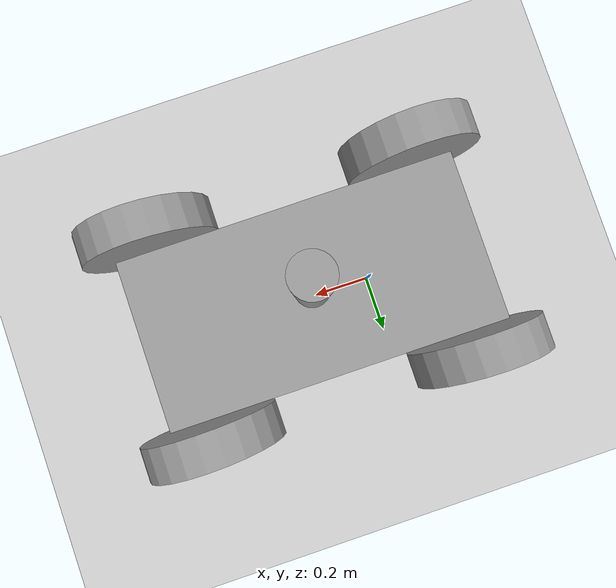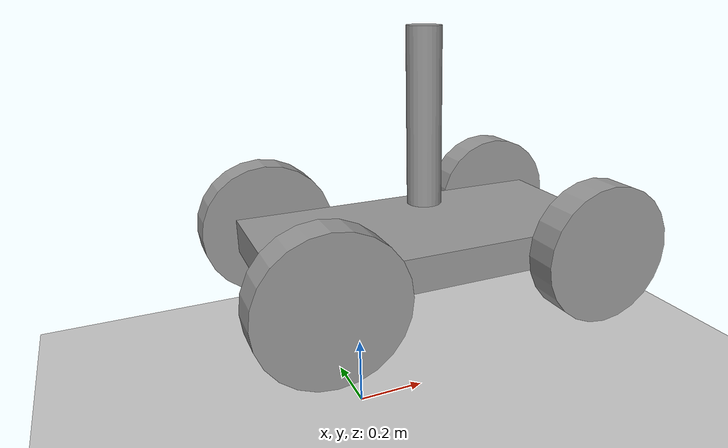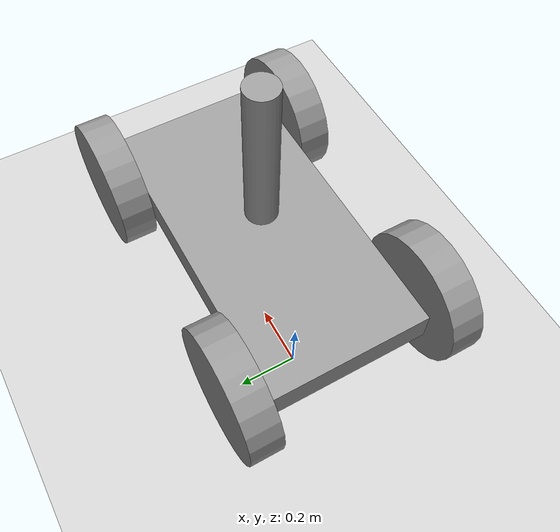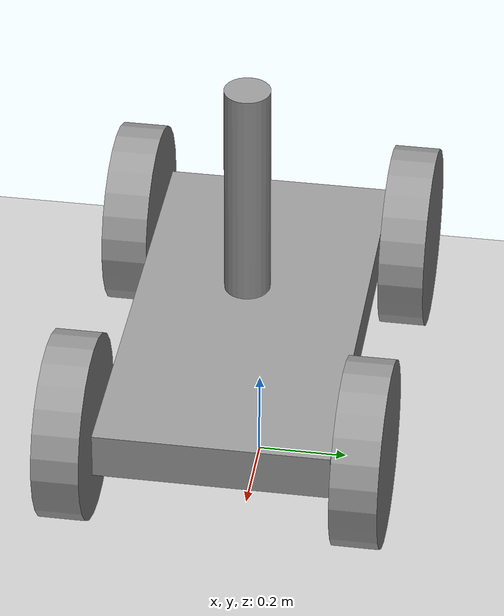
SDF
<sdf version='1.6'>
  <world name='default'>
    <include><uri>model://sun</uri></include>
    <include><uri>model://ground_plane</uri></include>
    <model name="cart">
      <include><uri>model://InvertedPendulumCart</uri></include>
      <plugin name="cart_control" filename="libcart_plugin.dylib"/>
    </model>
  </world>
</sdf>

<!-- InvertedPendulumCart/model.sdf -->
<sdf version='1.6'>
  <model name='InvertedPendulumCart'>
    <link name='Chassis'>
      <inertial>
        <mass>1</mass>
        <inertia>
          <ixx>0.166667</ixx>
          <ixy>0</ixy>
          <ixz>0</ixz>
          <iyy>0.166667</iyy>
          <iyz>0</iyz>
          <izz>0.166667</izz>
        </inertia>
        <pose frame=''>0 0 0 0 -0 0</pose>
      </inertial>
      <pose frame=''>0.215807 0.005294 0.5 0 -0 0</pose>
      <gravity>1</gravity>
      <self_collide>0</self_collide>
      <kinematic>0</kinematic>
      <enable_wind>0</enable_wind>
      <visual name='visual'>
        <pose frame=''>0 0 0 0 -0 0</pose>
        <geometry>
          <box>
            <size>1 0.5 0.1</size>
          </box>
        </geometry>
        <material>
          <lighting>1</lighting>
          <script>
            <uri>file://media/materials/scripts/gazebo.material</uri>
            <name>Gazebo/Grey</name>
          </script>
          <shader type='pixel'>
            <normal_map>__default__</normal_map>
          </shader>
          <ambient>0.3 0.3 0.3 1</ambient>
          <diffuse>0.7 0.7 0.7 1</diffuse>
          <specular>0.01 0.01 0.01 1</specular>
          <emissive>0 0 0 1</emissive>
        </material>
        <transparency>0</transparency>
        <cast_shadows>1</cast_shadows>
      </visual>
      <collision name='collision'>
        <laser_retro>0</laser_retro>
        <max_contacts>10</max_contacts>
        <pose frame=''>0 0 0 0 -0 0</pose>
        <geometry>
          <box>
            <size>1 0.5 0.1</size>
          </box>
        </geometry>
        <surface>
          <friction>
            <ode>
              <mu>1</mu>
              <mu2>1</mu2>
              <fdir1>0 0 0</fdir1>
              <slip1>0</slip1>
              <slip2>0</slip2>
            </ode>
            <torsional>
              <coefficient>1</coefficient>
              <patch_radius>0</patch_radius>
              <surface_radius>0</surface_radius>
              <use_patch_radius>1</use_patch_radius>
              <ode>
                <slip>0</slip>
              </ode>
            </torsional>
          </friction>
          <bounce>
            <restitution_coefficient>0</restitution_coefficient>
            <threshold>1e+06</threshold>
          </bounce>
          <contact>
            <collide_without_contact>0</collide_without_contact>
            <collide_without_contact_bitmask>1</collide_without_contact_bitmask>
            <collide_bitmask>1</collide_bitmask>
            <ode>
              <soft_cfm>0</soft_cfm>
              <soft_erp>0.2</soft_erp>
              <kp>1e+13</kp>
              <kd>1</kd>
              <max_vel>0.01</max_vel>
              <min_depth>0</min_depth>
            </ode>
            <bullet>
              <split_impulse>1</split_impulse>
              <split_impulse_penetration_threshold>-0.01</split_impulse_penetration_threshold>
              <soft_cfm>0</soft_cfm>
              <soft_erp>0.2</soft_erp>
              <kp>1e+13</kp>
              <kd>1</kd>
            </bullet>
          </contact>
        </surface>
      </collision>
    </link>
    <link name='WheelRightBack'>
      <inertial>
        <mass>1</mass>
        <inertia>
          <ixx>0.145833</ixx>
          <ixy>0</ixy>
          <ixz>0</ixz>
          <iyy>0.145833</iyy>
          <iyz>0</iyz>
          <izz>0.125</izz>
        </inertia>
        <pose frame=''>0 0 0 0 -0 0</pose>
      </inertial>
      <pose frame=''>-0.184192 -0.304706 0.5 1.5708 -0 0</pose>
      <gravity>1</gravity>
      <self_collide>0</self_collide>
      <kinematic>0</kinematic>
      <enable_wind>0</enable_wind>
      <visual name='visual'>
        <pose frame=''>0 0 0 0 -0 0</pose>
        <geometry>
          <cylinder>
            <radius>0.2</radius>
            <length>0.1</length>
          </cylinder>
        </geometry>
        <material>
          <lighting>1</lighting>
          <script>
            <uri>file://media/materials/scripts/gazebo.material</uri>
            <name>Gazebo/Grey</name>
          </script>
          <shader type='pixel'>
            <normal_map>__default__</normal_map>
          </shader>
          <ambient>0.3 0.3 0.3 1</ambient>
          <diffuse>0.7 0.7 0.7 1</diffuse>
          <specular>0.01 0.01 0.01 1</specular>
          <emissive>0 0 0 1</emissive>
        </material>
        <transparency>0</transparency>
        <cast_shadows>1</cast_shadows>
      </visual>
      <collision name='collision'>
        <laser_retro>0</laser_retro>
        <max_contacts>10</max_contacts>
        <pose frame=''>0 0 0 0 -0 0</pose>
        <geometry>
          <cylinder>
            <radius>0.2</radius>
            <length>0.1</length>
          </cylinder>
        </geometry>
        <surface>
          <friction>
            <ode>
              <mu>1</mu>
              <mu2>1</mu2>
              <fdir1>0 0 0</fdir1>
              <slip1>0</slip1>
              <slip2>0</slip2>
            </ode>
            <torsional>
              <coefficient>1</coefficient>
              <patch_radius>0</patch_radius>
              <surface_radius>0</surface_radius>
              <use_patch_radius>1</use_patch_radius>
              <ode>
                <slip>0</slip>
              </ode>
            </torsional>
          </friction>
          <bounce>
            <restitution_coefficient>0</restitution_coefficient>
            <threshold>1e+06</threshold>
          </bounce>
          <contact>
            <collide_without_contact>0</collide_without_contact>
            <collide_without_contact_bitmask>1</collide_without_contact_bitmask>
            <collide_bitmask>1</collide_bitmask>
            <ode>
              <soft_cfm>0</soft_cfm>
              <soft_erp>0.2</soft_erp>
              <kp>1e+13</kp>
              <kd>1</kd>
              <max_vel>0.01</max_vel>
              <min_depth>0</min_depth>
            </ode>
            <bullet>
              <split_impulse>1</split_impulse>
              <split_impulse_penetration_threshold>-0.01</split_impulse_penetration_threshold>
              <soft_cfm>0</soft_cfm>
              <soft_erp>0.2</soft_erp>
              <kp>1e+13</kp>
              <kd>1</kd>
            </bullet>
          </contact>
        </surface>
      </collision>
    </link>
    <link name='WheelLeftBack'>
      <inertial>
        <mass>1</mass>
        <inertia>
          <ixx>0.145833</ixx>
          <ixy>0</ixy>
          <ixz>0</ixz>
          <iyy>0.145833</iyy>
          <iyz>0</iyz>
          <izz>0.125</izz>
        </inertia>
        <pose frame=''>0 0 0 0 -0 0</pose>
      </inertial>
      <pose frame=''>-0.184192 0.315295 0.5 1.5708 -0 0</pose>
      <gravity>1</gravity>
      <self_collide>0</self_collide>
      <kinematic>0</kinematic>
      <enable_wind>0</enable_wind>
      <visual name='visual'>
        <pose frame=''>0 0 0 0 -0 0</pose>
        <geometry>
          <cylinder>
            <radius>0.2</radius>
            <length>0.1</length>
          </cylinder>
        </geometry>
        <material>
          <lighting>1</lighting>
          <script>
            <uri>file://media/materials/scripts/gazebo.material</uri>
            <name>Gazebo/Grey</name>
          </script>
          <shader type='pixel'>
            <normal_map>__default__</normal_map>
          </shader>
          <ambient>0.3 0.3 0.3 1</ambient>
          <diffuse>0.7 0.7 0.7 1</diffuse>
          <specular>0.01 0.01 0.01 1</specular>
          <emissive>0 0 0 1</emissive>
        </material>
        <transparency>0</transparency>
        <cast_shadows>1</cast_shadows>
      </visual>
      <collision name='collision'>
        <laser_retro>0</laser_retro>
        <max_contacts>10</max_contacts>
        <pose frame=''>0 0 0 0 -0 0</pose>
        <geometry>
          <cylinder>
            <radius>0.2</radius>
            <length>0.1</length>
          </cylinder>
        </geometry>
        <surface>
          <friction>
            <ode>
              <mu>1</mu>
              <mu2>1</mu2>
              <fdir1>0 0 0</fdir1>
              <slip1>0</slip1>
              <slip2>0</slip2>
            </ode>
            <torsional>
              <coefficient>1</coefficient>
              <patch_radius>0</patch_radius>
              <surface_radius>0</surface_radius>
              <use_patch_radius>1</use_patch_radius>
              <ode>
                <slip>0</slip>
              </ode>
            </torsional>
          </friction>
          <bounce>
            <restitution_coefficient>0</restitution_coefficient>
            <threshold>1e+06</threshold>
          </bounce>
          <contact>
            <collide_without_contact>0</collide_without_contact>
            <collide_without_contact_bitmask>1</collide_without_contact_bitmask>
            <collide_bitmask>1</collide_bitmask>
            <ode>
              <soft_cfm>0</soft_cfm>
              <soft_erp>0.2</soft_erp>
              <kp>1e+13</kp>
              <kd>1</kd>
              <max_vel>0.01</max_vel>
              <min_depth>0</min_depth>
            </ode>
            <bullet>
              <split_impulse>1</split_impulse>
              <split_impulse_penetration_threshold>-0.01</split_impulse_penetration_threshold>
              <soft_cfm>0</soft_cfm>
              <soft_erp>0.2</soft_erp>
              <kp>1e+13</kp>
              <kd>1</kd>
            </bullet>
          </contact>
        </surface>
      </collision>
    </link>
    <link name='WheelRightFront'>
      <inertial>
        <mass>1</mass>
        <inertia>
          <ixx>0.145833</ixx>
          <ixy>0</ixy>
          <ixz>0</ixz>
          <iyy>0.145833</iyy>
          <iyz>0</iyz>
          <izz>0.125</izz>
        </inertia>
        <pose frame=''>0 0 0 0 -0 0</pose>
      </inertial>
      <pose frame=''>0.615808 -0.304706 0.5 1.5708 -0 0</pose>
      <gravity>1</gravity>
      <self_collide>0</self_collide>
      <kinematic>0</kinematic>
      <enable_wind>0</enable_wind>
      <visual name='visual'>
        <pose frame=''>0 0 0 0 -0 0</pose>
        <geometry>
          <cylinder>
            <radius>0.2</radius>
            <length>0.1</length>
          </cylinder>
        </geometry>
        <material>
          <lighting>1</lighting>
          <script>
            <uri>file://media/materials/scripts/gazebo.material</uri>
            <name>Gazebo/Grey</name>
          </script>
          <shader type='pixel'>
            <normal_map>__default__</normal_map>
          </shader>
          <ambient>0.3 0.3 0.3 1</ambient>
          <diffuse>0.7 0.7 0.7 1</diffuse>
          <specular>0.01 0.01 0.01 1</specular>
          <emissive>0 0 0 1</emissive>
        </material>
        <transparency>0</transparency>
        <cast_shadows>1</cast_shadows>
      </visual>
      <collision name='collision'>
        <laser_retro>0</laser_retro>
        <max_contacts>10</max_contacts>
        <pose frame=''>0 0 0 0 -0 0</pose>
        <geometry>
          <cylinder>
            <radius>0.2</radius>
            <length>0.1</length>
          </cylinder>
        </geometry>
        <surface>
          <friction>
            <ode>
              <mu>1</mu>
              <mu2>1</mu2>
              <fdir1>0 0 0</fdir1>
              <slip1>0</slip1>
              <slip2>0</slip2>
            </ode>
            <torsional>
              <coefficient>1</coefficient>
              <patch_radius>0</patch_radius>
              <surface_radius>0</surface_radius>
              <use_patch_radius>1</use_patch_radius>
              <ode>
                <slip>0</slip>
              </ode>
            </torsional>
          </friction>
          <bounce>
            <restitution_coefficient>0</restitution_coefficient>
            <threshold>1e+06</threshold>
          </bounce>
          <contact>
            <collide_without_contact>0</collide_without_contact>
            <collide_without_contact_bitmask>1</collide_without_contact_bitmask>
            <collide_bitmask>1</collide_bitmask>
            <ode>
              <soft_cfm>0</soft_cfm>
              <soft_erp>0.2</soft_erp>
              <kp>1e+13</kp>
              <kd>1</kd>
              <max_vel>0.01</max_vel>
              <min_depth>0</min_depth>
            </ode>
            <bullet>
              <split_impulse>1</split_impulse>
              <split_impulse_penetration_threshold>-0.01</split_impulse_penetration_threshold>
              <soft_cfm>0</soft_cfm>
              <soft_erp>0.2</soft_erp>
              <kp>1e+13</kp>
              <kd>1</kd>
            </bullet>
          </contact>
        </surface>
      </collision>
    </link>
    <link name='WheelLeftFront'>
      <inertial>
        <mass>1</mass>
        <inertia>
          <ixx>0.145833</ixx>
          <ixy>0</ixy>
          <ixz>0</ixz>
          <iyy>0.145833</iyy>
          <iyz>0</iyz>
          <izz>0.125</izz>
        </inertia>
        <pose frame=''>0 0 0 0 -0 0</pose>
      </inertial>
      <pose frame=''>0.615808 0.315295 0.5 1.5708 -0 0</pose>
      <gravity>1</gravity>
      <self_collide>0</self_collide>
      <kinematic>0</kinematic>
      <enable_wind>0</enable_wind>
      <visual name='visual'>
        <pose frame=''>0 0 0 0 -0 0</pose>
        <geometry>
          <cylinder>
            <radius>0.2</radius>
            <length>0.1</length>
          </cylinder>
        </geometry>
        <material>
          <lighting>1</lighting>
          <script>
            <uri>file://media/materials/scripts/gazebo.material</uri>
            <name>Gazebo/Grey</name>
          </script>
          <shader type='pixel'>
            <normal_map>__default__</normal_map>
          </shader>
          <ambient>0.3 0.3 0.3 1</ambient>
          <diffuse>0.7 0.7 0.7 1</diffuse>
          <specular>0.01 0.01 0.01 1</specular>
          <emissive>0 0 0 1</emissive>
        </material>
        <transparency>0</transparency>
        <cast_shadows>1</cast_shadows>
      </visual>
      <collision name='collision'>
        <laser_retro>0</laser_retro>
        <max_contacts>10</max_contacts>
        <pose frame=''>0 0 0 0 -0 0</pose>
        <geometry>
          <cylinder>
            <radius>0.2</radius>
            <length>0.1</length>
          </cylinder>
        </geometry>
        <surface>
          <friction>
            <ode>
              <mu>1</mu>
              <mu2>1</mu2>
              <fdir1>0 0 0</fdir1>
              <slip1>0</slip1>
              <slip2>0</slip2>
            </ode>
            <torsional>
              <coefficient>1</coefficient>
              <patch_radius>0</patch_radius>
              <surface_radius>0</surface_radius>
              <use_patch_radius>1</use_patch_radius>
              <ode>
                <slip>0</slip>
              </ode>
            </torsional>
          </friction>
          <bounce>
            <restitution_coefficient>0</restitution_coefficient>
            <threshold>1e+06</threshold>
          </bounce>
          <contact>
            <collide_without_contact>0</collide_without_contact>
            <collide_without_contact_bitmask>1</collide_without_contact_bitmask>
            <collide_bitmask>1</collide_bitmask>
            <ode>
              <soft_cfm>0</soft_cfm>
              <soft_erp>0.2</soft_erp>
              <kp>1e+13</kp>
              <kd>1</kd>
              <max_vel>0.01</max_vel>
              <min_depth>0</min_depth>
            </ode>
            <bullet>
              <split_impulse>1</split_impulse>
              <split_impulse_penetration_threshold>-0.01</split_impulse_penetration_threshold>
              <soft_cfm>0</soft_cfm>
              <soft_erp>0.2</soft_erp>
              <kp>1e+13</kp>
              <kd>1</kd>
            </bullet>
          </contact>
        </surface>
      </collision>
    </link>
    <link name='PendulumArm'>
      <inertial>
        <mass>1</mass>
        <inertia>
          <ixx>0.145833</ixx>
          <ixy>0</ixy>
          <ixz>0</ixz>
          <iyy>0.145833</iyy>
          <iyz>0</iyz>
          <izz>0.125</izz>
        </inertia>
        <pose frame=''>0 0 0 0 -0 0</pose>
      </inertial>
      <pose frame=''>0.215807 0.005294 0.86 0 -0 0</pose>
      <gravity>1</gravity>
      <self_collide>0</self_collide>
      <kinematic>0</kinematic>
      <enable_wind>0</enable_wind>
      <visual name='visual'>
        <pose frame=''>0 0 0 0 -0 0</pose>
        <geometry>
          <cylinder>
            <radius>0.05</radius>
            <length>0.5</length>
          </cylinder>
        </geometry>
        <material>
          <lighting>1</lighting>
          <script>
            <uri>file://media/materials/scripts/gazebo.material</uri>
            <name>Gazebo/Grey</name>
          </script>
          <shader type='pixel'>
            <normal_map>__default__</normal_map>
          </shader>
          <ambient>0.3 0.3 0.3 1</ambient>
          <diffuse>0.7 0.7 0.7 1</diffuse>
          <specular>0.01 0.01 0.01 1</specular>
          <emissive>0 0 0 1</emissive>
        </material>
        <transparency>0</transparency>
        <cast_shadows>1</cast_shadows>
      </visual>
      <collision name='collision'>
        <laser_retro>0</laser_retro>
        <max_contacts>10</max_contacts>
        <pose frame=''>0 0 0 0 -0 0</pose>
        <geometry>
          <cylinder>
            <radius>0.05</radius>
            <length>0.5</length>
          </cylinder>
        </geometry>
        <surface>
          <friction>
            <ode>
              <mu>1</mu>
              <mu2>1</mu2>
              <fdir1>0 0 0</fdir1>
              <slip1>0</slip1>
              <slip2>0</slip2>
            </ode>
            <torsional>
              <coefficient>1</coefficient>
              <patch_radius>0</patch_radius>
              <surface_radius>0</surface_radius>
              <use_patch_radius>1</use_patch_radius>
              <ode>
                <slip>0</slip>
              </ode>
            </torsional>
          </friction>
          <bounce>
            <restitution_coefficient>0</restitution_coefficient>
            <threshold>1e+06</threshold>
          </bounce>
          <contact>
            <collide_without_contact>0</collide_without_contact>
            <collide_without_contact_bitmask>1</collide_without_contact_bitmask>
            <collide_bitmask>1</collide_bitmask>
            <ode>
              <soft_cfm>0</soft_cfm>
              <soft_erp>0.2</soft_erp>
              <kp>1e+13</kp>
              <kd>1</kd>
              <max_vel>0.01</max_vel>
              <min_depth>0</min_depth>
            </ode>
            <bullet>
              <split_impulse>1</split_impulse>
              <split_impulse_penetration_threshold>-0.01</split_impulse_penetration_threshold>
              <soft_cfm>0</soft_cfm>
              <soft_erp>0.2</soft_erp>
              <kp>1e+13</kp>
              <kd>1</kd>
            </bullet>
          </contact>
        </surface>
      </collision>
    </link>
    <joint name='WheelRightBackRevolute' type='revolute'>
      <parent>Chassis</parent>
      <child>WheelRightBack</child>
      <pose frame=''>0 0 0 0 -0 0</pose>
      <axis>
        <xyz>0 0 -1</xyz>
        <use_parent_model_frame>0</use_parent_model_frame>
        <limit>
          <lower>-1.79769e+308</lower>
          <upper>1.79769e+308</upper>
          <effort>-1</effort>
          <velocity>-1</velocity>
        </limit>
        <dynamics>
          <spring_reference>0</spring_reference>
          <spring_stiffness>0</spring_stiffness>
          <damping>0</damping>
          <friction>0</friction>
        </dynamics>
      </axis>
      <physics>
        <ode>
          <limit>
            <cfm>0</cfm>
            <erp>0.2</erp>
          </limit>
          <suspension>
            <cfm>0</cfm>
            <erp>0.2</erp>
          </suspension>
        </ode>
      </physics>
    </joint>
    <joint name='WheelLeftBackRevolute' type='revolute'>
      <parent>Chassis</parent>
      <child>WheelLeftBack</child>
      <pose frame=''>0 0 0 0 -0 0</pose>
      <axis>
        <xyz>0 0 -1</xyz>
        <use_parent_model_frame>0</use_parent_model_frame>
        <limit>
          <lower>-1.79769e+308</lower>
          <upper>1.79769e+308</upper>
          <effort>-1</effort>
          <velocity>-1</velocity>
        </limit>
        <dynamics>
          <spring_reference>0</spring_reference>
          <spring_stiffness>0</spring_stiffness>
          <damping>0</damping>
          <friction>0</friction>
        </dynamics>
      </axis>
      <physics>
        <ode>
          <limit>
            <cfm>0</cfm>
            <erp>0.2</erp>
          </limit>
          <suspension>
            <cfm>0</cfm>
            <erp>0.2</erp>
          </suspension>
        </ode>
      </physics>
    </joint>
    <joint name='WheelLeftFrontRevolute' type='revolute'>
      <parent>Chassis</parent>
      <child>WheelLeftFront</child>
      <pose frame=''>0 0 0 0 -0 0</pose>
      <axis>
        <xyz>0 0 -1</xyz>
        <use_parent_model_frame>0</use_parent_model_frame>
        <limit>
          <lower>-1.79769e+308</lower>
          <upper>1.79769e+308</upper>
          <effort>-1</effort>
          <velocity>-1</velocity>
        </limit>
        <dynamics>
          <spring_reference>0</spring_reference>
          <spring_stiffness>0</spring_stiffness>
          <damping>0</damping>
          <friction>0</friction>
        </dynamics>
      </axis>
      <physics>
        <ode>
          <limit>
            <cfm>0</cfm>
            <erp>0.2</erp>
          </limit>
          <suspension>
            <cfm>0</cfm>
            <erp>0.2</erp>
          </suspension>
        </ode>
      </physics>
    </joint>
    <joint name='WheelRightFrontRevolute' type='revolute'>
      <parent>Chassis</parent>
      <child>WheelRightFront</child>
      <pose frame=''>0 0 0 0 -0 0</pose>
      <axis>
        <xyz>0 0 -1</xyz>
        <use_parent_model_frame>0</use_parent_model_frame>
        <limit>
          <lower>-1.79769e+308</lower>
          <upper>1.79769e+308</upper>
          <effort>-1</effort>
          <velocity>-1</velocity>
        </limit>
        <dynamics>
          <spring_reference>0</spring_reference>
          <spring_stiffness>0</spring_stiffness>
          <damping>0</damping>
          <friction>0</friction>
        </dynamics>
      </axis>
      <physics>
        <ode>
          <limit>
            <cfm>0</cfm>
            <erp>0.2</erp>
          </limit>
          <suspension>
            <cfm>0</cfm>
            <erp>0.2</erp>
          </suspension>
        </ode>
      </physics>
    </joint>
    <joint name='ChassisPendulumRevolute' type='revolute'>
      <parent>Chassis</parent>
      <child>PendulumArm</child>
      <pose frame=''>0 0 -0.25 0 -0 0</pose>
      <axis>
        <xyz>0 1 0</xyz>
        <use_parent_model_frame>0</use_parent_model_frame>
        <limit>
          <lower>-1.79769e+308</lower>
          <upper>1.79769e+308</upper>
          <effort>-1</effort>
          <velocity>-1</velocity>
        </limit>
        <dynamics>
          <spring_reference>0</spring_reference>
          <spring_stiffness>0</spring_stiffness>
          <damping>0</damping>
        </dynamics>
      </axis>
      <physics>
        <ode>
          <limit>
            <cfm>0</cfm>
            <erp>0.2</erp>
          </limit>
          <suspension>
            <cfm>0</cfm>
            <erp>0.2</erp>
          </suspension>
        </ode>
      </physics>
    </joint>
    <static>0</static>
    <allow_auto_disable>1</allow_auto_disable>
  </model>
</sdf>
